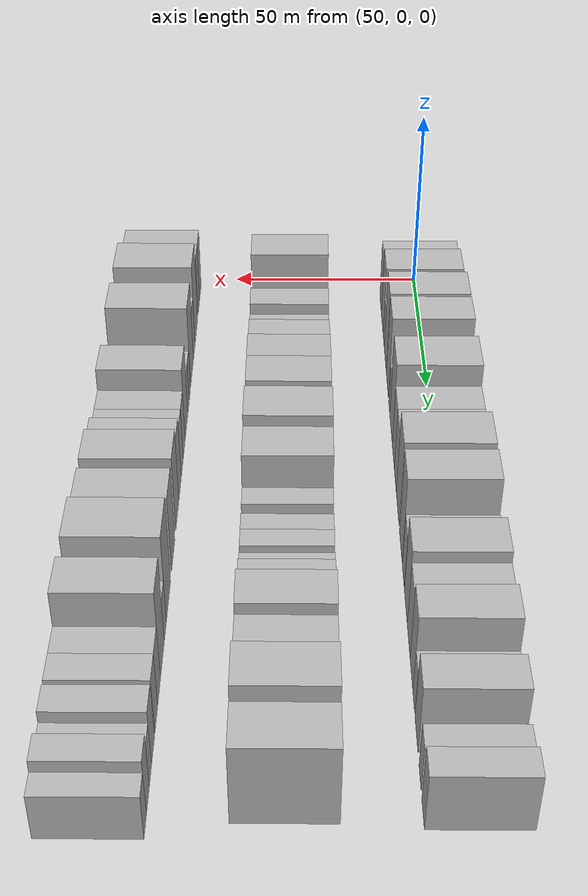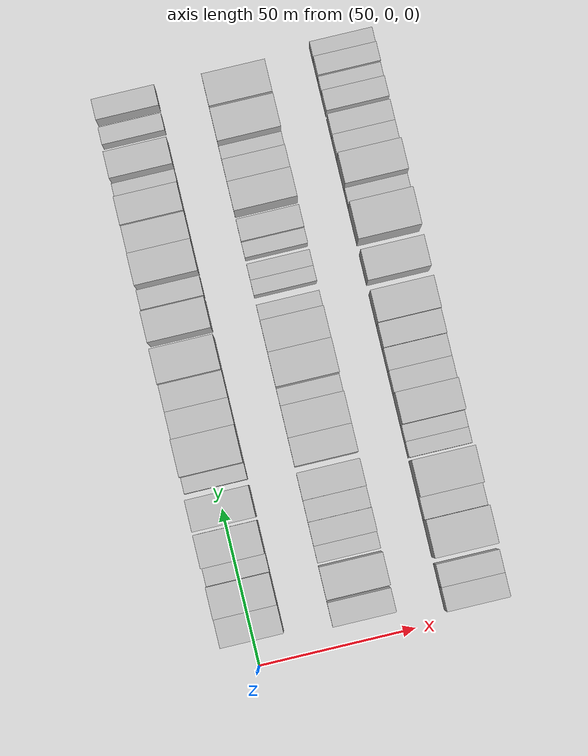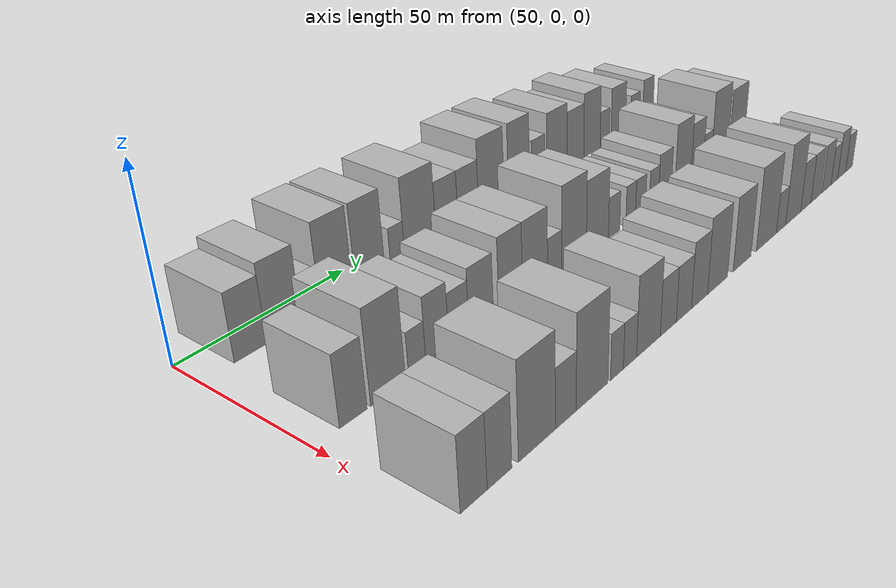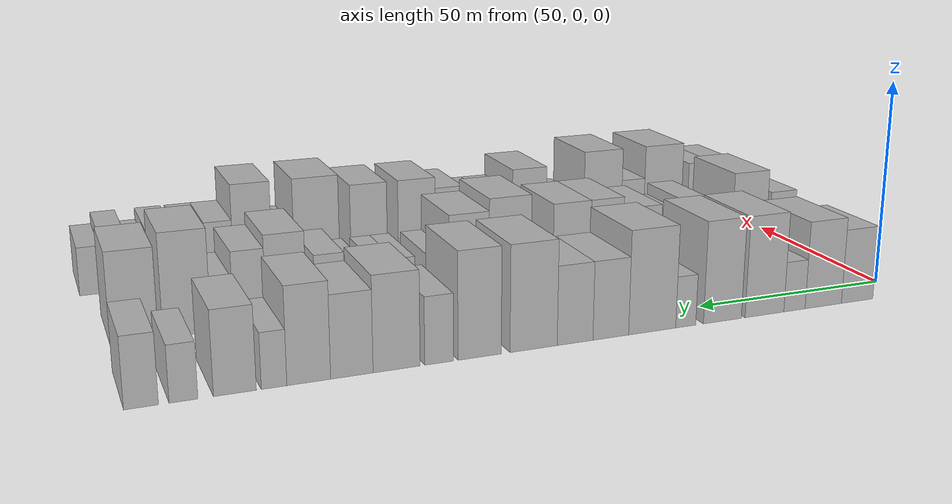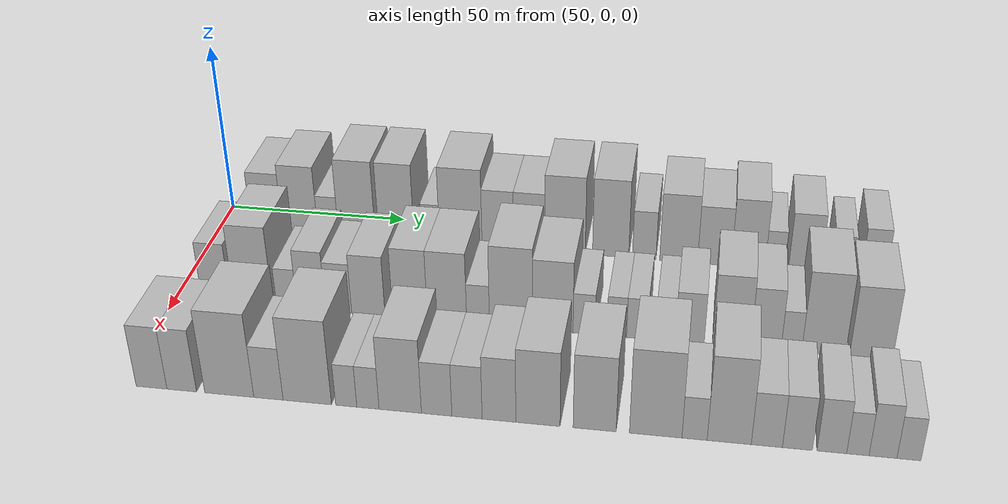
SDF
<sdf version="1.6">
 <world name="default">
  <model name="building_38">
   <static>1</static>
   <pose>50.0000 13.2375 0 0.000000 0.000000 0.000000</pose>
   <link name="link">
    <pose>0 0 9.00 0 0 0</pose>
    <collision name="collision"><geometry><box><size>20.0000 8.9883 18.0000</size></box></geometry></collision>
    <visual name="visual">
     <cast_shadows>0</cast_shadows>
     <geometry><box><size>20.0000 8.9883 18.0000</size></box></geometry>
     <material>
      <script>
       <uri>model://HANNAS_wall/materials/scripts</uri>
       <uri>model://HANNAS_wall/materials/textures</uri>
       <name>vrc/HANNAS_wall</name>
      </script>
     </material>
    </visual>
   </link>
  </model>
  <model name="building_39">
   <static>1</static>
   <pose>50.0000 22.7996 0 0.000000 0.000000 0.000000</pose>
   <link name="link">
    <pose>0 0 10.50 0 0 0</pose>
    <collision name="collision"><geometry><box><size>20.0000 10.1359 21.0000</size></box></geometry></collision>
    <visual name="visual">
     <cast_shadows>0</cast_shadows>
     <geometry><box><size>20.0000 10.1359 21.0000</size></box></geometry>
     <material>
      <script>
       <uri>model://HANNAS_wall/materials/scripts</uri>
       <uri>model://HANNAS_wall/materials/textures</uri>
       <name>vrc/HANNAS_wall</name>
      </script>
     </material>
    </visual>
   </link>
  </model>
  <model name="building_40">
   <static>1</static>
   <pose>50.0000 30.7865 0 0.000000 0.000000 0.000000</pose>
   <link name="link">
    <pose>0 0 6.00 0 0 0</pose>
    <collision name="collision"><geometry><box><size>20.0000 5.8380 12.0000</size></box></geometry></collision>
    <visual name="visual">
     <cast_shadows>0</cast_shadows>
     <geometry><box><size>20.0000 5.8380 12.0000</size></box></geometry>
     <material>
      <script>
       <uri>model://HANNAS_wall/materials/scripts</uri>
       <uri>model://HANNAS_wall/materials/textures</uri>
       <name>vrc/HANNAS_wall</name>
      </script>
     </material>
    </visual>
   </link>
  </model>
  <model name="building_41">
   <static>1</static>
   <pose>50.0000 38.9239 0 0.000000 0.000000 0.000000</pose>
   <link name="link">
    <pose>0 0 12.00 0 0 0</pose>
    <collision name="collision"><geometry><box><size>20.0000 10.4368 24.0000</size></box></geometry></collision>
    <visual name="visual">
     <cast_shadows>0</cast_shadows>
     <geometry><box><size>20.0000 10.4368 24.0000</size></box></geometry>
     <material>
      <script>
       <uri>model://HANNAS_wall/materials/scripts</uri>
       <uri>model://HANNAS_wall/materials/textures</uri>
       <name>vrc/HANNAS_wall</name>
      </script>
     </material>
    </visual>
   </link>
  </model>
  <model name="building_42">
   <static>1</static>
   <pose>50.0000 50.1091 0 0.000000 0.000000 0.000000</pose>
   <link name="link">
    <pose>0 0 12.00 0 0 0</pose>
    <collision name="collision"><geometry><box><size>20.0000 9.9337 24.0000</size></box></geometry></collision>
    <visual name="visual">
     <cast_shadows>0</cast_shadows>
     <geometry><box><size>20.0000 9.9337 24.0000</size></box></geometry>
     <material>
      <script>
       <uri>model://HANNAS_wall/materials/scripts</uri>
       <uri>model://HANNAS_wall/materials/textures</uri>
       <name>vrc/HANNAS_wall</name>
      </script>
     </material>
    </visual>
   </link>
  </model>
  <model name="building_43">
   <static>1</static>
   <pose>50.0000 59.6390 0 0.000000 0.000000 0.000000</pose>
   <link name="link">
    <pose>0 0 6.00 0 0 0</pose>
    <collision name="collision"><geometry><box><size>20.0000 5.1261 12.0000</size></box></geometry></collision>
    <visual name="visual">
     <cast_shadows>0</cast_shadows>
     <geometry><box><size>20.0000 5.1261 12.0000</size></box></geometry>
     <material>
      <script>
       <uri>model://HANNAS_wall/materials/scripts</uri>
       <uri>model://HANNAS_wall/materials/textures</uri>
       <name>vrc/HANNAS_wall</name>
      </script>
     </material>
    </visual>
   </link>
  </model>
  <model name="building_44">
   <static>1</static>
   <pose>50.0000 68.1139 0 0.000000 0.000000 0.000000</pose>
   <link name="link">
    <pose>0 0 12.00 0 0 0</pose>
    <collision name="collision"><geometry><box><size>20.0000 11.8237 24.0000</size></box></geometry></collision>
    <visual name="visual">
     <cast_shadows>0</cast_shadows>
     <geometry><box><size>20.0000 11.8237 24.0000</size></box></geometry>
     <material>
      <script>
       <uri>model://HANNAS_wall/materials/scripts</uri>
       <uri>model://HANNAS_wall/materials/textures</uri>
       <name>vrc/HANNAS_wall</name>
      </script>
     </material>
    </visual>
   </link>
  </model>
  <model name="building_45">
   <static>1</static>
   <pose>50.0000 78.3907 0 0.000000 0.000000 0.000000</pose>
   <link name="link">
    <pose>0 0 9.00 0 0 0</pose>
    <collision name="collision"><geometry><box><size>20.0000 8.7300 18.0000</size></box></geometry></collision>
    <visual name="visual">
     <cast_shadows>0</cast_shadows>
     <geometry><box><size>20.0000 8.7300 18.0000</size></box></geometry>
     <material>
      <script>
       <uri>model://HANNAS_wall/materials/scripts</uri>
       <uri>model://HANNAS_wall/materials/textures</uri>
       <name>vrc/HANNAS_wall</name>
      </script>
     </material>
    </visual>
   </link>
  </model>
  <model name="building_46">
   <static>1</static>
   <pose>50.0000 87.0380 0 0.000000 0.000000 0.000000</pose>
   <link name="link">
    <pose>0 0 9.00 0 0 0</pose>
    <collision name="collision"><geometry><box><size>20.0000 8.5646 18.0000</size></box></geometry></collision>
    <visual name="visual">
     <cast_shadows>0</cast_shadows>
     <geometry><box><size>20.0000 8.5646 18.0000</size></box></geometry>
     <material>
      <script>
       <uri>model://HANNAS_wall/materials/scripts</uri>
       <uri>model://HANNAS_wall/materials/textures</uri>
       <name>vrc/HANNAS_wall</name>
      </script>
     </material>
    </visual>
   </link>
  </model>
  <model name="building_47">
   <static>1</static>
   <pose>50.0000 96.8350 0 0.000000 0.000000 0.000000</pose>
   <link name="link">
    <pose>0 0 12.00 0 0 0</pose>
    <collision name="collision"><geometry><box><size>20.0000 11.0292 24.0000</size></box></geometry></collision>
    <visual name="visual">
     <cast_shadows>0</cast_shadows>
     <geometry><box><size>20.0000 11.0292 24.0000</size></box></geometry>
     <material>
      <script>
       <uri>model://HANNAS_wall/materials/scripts</uri>
       <uri>model://HANNAS_wall/materials/textures</uri>
       <name>vrc/HANNAS_wall</name>
      </script>
     </material>
    </visual>
   </link>
  </model>
  <model name="building_48">
   <static>1</static>
   <pose>50.0000 109.2507 0 0.000000 0.000000 0.000000</pose>
   <link name="link">
    <pose>0 0 12.00 0 0 0</pose>
    <collision name="collision"><geometry><box><size>20.0000 9.8022 24.0000</size></box></geometry></collision>
    <visual name="visual">
     <cast_shadows>0</cast_shadows>
     <geometry><box><size>20.0000 9.8022 24.0000</size></box></geometry>
     <material>
      <script>
       <uri>model://HANNAS_wall/materials/scripts</uri>
       <uri>model://HANNAS_wall/materials/textures</uri>
       <name>vrc/HANNAS_wall</name>
      </script>
     </material>
    </visual>
   </link>
  </model>
  <model name="building_49">
   <static>1</static>
   <pose>50.0000 118.3284 0 0.000000 0.000000 0.000000</pose>
   <link name="link">
    <pose>0 0 7.50 0 0 0</pose>
    <collision name="collision"><geometry><box><size>20.0000 6.3532 15.0000</size></box></geometry></collision>
    <visual name="visual">
     <cast_shadows>0</cast_shadows>
     <geometry><box><size>20.0000 6.3532 15.0000</size></box></geometry>
     <material>
      <script>
       <uri>model://HANNAS_wall/materials/scripts</uri>
       <uri>model://HANNAS_wall/materials/textures</uri>
       <name>vrc/HANNAS_wall</name>
      </script>
     </material>
    </visual>
   </link>
  </model>
  <model name="building_50">
   <static>1</static>
   <pose>50.0000 127.5744 0 0.000000 0.000000 0.000000</pose>
   <link name="link">
    <pose>0 0 10.50 0 0 0</pose>
    <collision name="collision"><geometry><box><size>20.0000 10.1386 21.0000</size></box></geometry></collision>
    <visual name="visual">
     <cast_shadows>0</cast_shadows>
     <geometry><box><size>20.0000 10.1386 21.0000</size></box></geometry>
     <material>
      <script>
       <uri>model://HANNAS_wall/materials/scripts</uri>
       <uri>model://HANNAS_wall/materials/textures</uri>
       <name>vrc/HANNAS_wall</name>
      </script>
     </material>
    </visual>
   </link>
  </model>
  <model name="building_51">
   <static>1</static>
   <pose>50.0000 137.1068 0 0.000000 0.000000 0.000000</pose>
   <link name="link">
    <pose>0 0 9.00 0 0 0</pose>
    <collision name="collision"><geometry><box><size>20.0000 8.9263 18.0000</size></box></geometry></collision>
    <visual name="visual">
     <cast_shadows>0</cast_shadows>
     <geometry><box><size>20.0000 8.9263 18.0000</size></box></geometry>
     <material>
      <script>
       <uri>model://HANNAS_wall/materials/scripts</uri>
       <uri>model://HANNAS_wall/materials/textures</uri>
       <name>vrc/HANNAS_wall</name>
      </script>
     </material>
    </visual>
   </link>
  </model>
  <model name="building_52">
   <static>1</static>
   <pose>50.0000 146.0639 0 0.000000 0.000000 0.000000</pose>
   <link name="link">
    <pose>0 0 10.50 0 0 0</pose>
    <collision name="collision"><geometry><box><size>20.0000 8.9878 21.0000</size></box></geometry></collision>
    <visual name="visual">
     <cast_shadows>0</cast_shadows>
     <geometry><box><size>20.0000 8.9878 21.0000</size></box></geometry>
     <material>
      <script>
       <uri>model://HANNAS_wall/materials/scripts</uri>
       <uri>model://HANNAS_wall/materials/textures</uri>
       <name>vrc/HANNAS_wall</name>
      </script>
     </material>
    </visual>
   </link>
  </model>
  <model name="building_53">
   <static>1</static>
   <pose>50.0000 153.1301 0 0.000000 0.000000 0.000000</pose>
   <link name="link">
    <pose>0 0 6.00 0 0 0</pose>
    <collision name="collision"><geometry><box><size>20.0000 5.1446 12.0000</size></box></geometry></collision>
    <visual name="visual">
     <cast_shadows>0</cast_shadows>
     <geometry><box><size>20.0000 5.1446 12.0000</size></box></geometry>
     <material>
      <script>
       <uri>model://HANNAS_wall/materials/scripts</uri>
       <uri>model://HANNAS_wall/materials/textures</uri>
       <name>vrc/HANNAS_wall</name>
      </script>
     </material>
    </visual>
   </link>
  </model>
  <model name="building_54">
   <static>1</static>
   <pose>50.0000 160.9307 0 0.000000 0.000000 0.000000</pose>
   <link name="link">
    <pose>0 0 9.00 0 0 0</pose>
    <collision name="collision"><geometry><box><size>20.0000 8.4567 18.0000</size></box></geometry></collision>
    <visual name="visual">
     <cast_shadows>0</cast_shadows>
     <geometry><box><size>20.0000 8.4567 18.0000</size></box></geometry>
     <material>
      <script>
       <uri>model://HANNAS_wall/materials/scripts</uri>
       <uri>model://HANNAS_wall/materials/textures</uri>
       <name>vrc/HANNAS_wall</name>
      </script>
     </material>
    </visual>
   </link>
  </model>
  <model name="building_55">
   <static>1</static>
   <pose>50.0000 170.9289 0 0.000000 0.000000 0.000000</pose>
   <link name="link">
    <pose>0 0 6.00 0 0 0</pose>
    <collision name="collision"><geometry><box><size>20.0000 5.5395 12.0000</size></box></geometry></collision>
    <visual name="visual">
     <cast_shadows>0</cast_shadows>
     <geometry><box><size>20.0000 5.5395 12.0000</size></box></geometry>
     <material>
      <script>
       <uri>model://HANNAS_wall/materials/scripts</uri>
       <uri>model://HANNAS_wall/materials/textures</uri>
       <name>vrc/HANNAS_wall</name>
      </script>
     </material>
    </visual>
   </link>
  </model>
  <model name="building_56">
   <static>1</static>
   <pose>50.0000 178.9766 0 0.000000 0.000000 0.000000</pose>
   <link name="link">
    <pose>0 0 7.50 0 0 0</pose>
    <collision name="collision"><geometry><box><size>20.0000 6.5558 15.0000</size></box></geometry></collision>
    <visual name="visual">
     <cast_shadows>0</cast_shadows>
     <geometry><box><size>20.0000 6.5558 15.0000</size></box></geometry>
     <material>
      <script>
       <uri>model://HANNAS_wall/materials/scripts</uri>
       <uri>model://HANNAS_wall/materials/textures</uri>
       <name>vrc/HANNAS_wall</name>
      </script>
     </material>
    </visual>
   </link>
  </model>
  <model name="building_122">
   <static>1</static>
   <pose>85.0000 10.8468 0 0.000000 0.000000 0.000000</pose>
   <link name="link">
    <pose>0 0 9.00 0 0 0</pose>
    <collision name="collision"><geometry><box><size>20.0000 7.6238 18.0000</size></box></geometry></collision>
    <visual name="visual">
     <cast_shadows>0</cast_shadows>
     <geometry><box><size>20.0000 7.6238 18.0000</size></box></geometry>
     <material>
      <script>
       <uri>model://HANNAS_wall/materials/scripts</uri>
       <uri>model://HANNAS_wall/materials/textures</uri>
       <name>vrc/HANNAS_wall</name>
      </script>
     </material>
    </visual>
   </link>
  </model>
  <model name="building_123">
   <static>1</static>
   <pose>85.0000 20.7957 0 0.000000 0.000000 0.000000</pose>
   <link name="link">
    <pose>0 0 12.00 0 0 0</pose>
    <collision name="collision"><geometry><box><size>20.0000 10.2740 24.0000</size></box></geometry></collision>
    <visual name="visual">
     <cast_shadows>0</cast_shadows>
     <geometry><box><size>20.0000 10.2740 24.0000</size></box></geometry>
     <material>
      <script>
       <uri>model://HANNAS_wall/materials/scripts</uri>
       <uri>model://HANNAS_wall/materials/textures</uri>
       <name>vrc/HANNAS_wall</name>
      </script>
     </material>
    </visual>
   </link>
  </model>
  <model name="building_124">
   <static>1</static>
   <pose>85.0000 29.6329 0 0.000000 0.000000 0.000000</pose>
   <link name="link">
    <pose>0 0 6.00 0 0 0</pose>
    <collision name="collision"><geometry><box><size>20.0000 5.4002 12.0000</size></box></geometry></collision>
    <visual name="visual">
     <cast_shadows>0</cast_shadows>
     <geometry><box><size>20.0000 5.4002 12.0000</size></box></geometry>
     <material>
      <script>
       <uri>model://HANNAS_wall/materials/scripts</uri>
       <uri>model://HANNAS_wall/materials/textures</uri>
       <name>vrc/HANNAS_wall</name>
      </script>
     </material>
    </visual>
   </link>
  </model>
  <model name="building_125">
   <static>1</static>
   <pose>85.0000 36.0879 0 0.000000 0.000000 0.000000</pose>
   <link name="link">
    <pose>0 0 9.00 0 0 0</pose>
    <collision name="collision"><geometry><box><size>20.0000 7.5098 18.0000</size></box></geometry></collision>
    <visual name="visual">
     <cast_shadows>0</cast_shadows>
     <geometry><box><size>20.0000 7.5098 18.0000</size></box></geometry>
     <material>
      <script>
       <uri>model://HANNAS_wall/materials/scripts</uri>
       <uri>model://HANNAS_wall/materials/textures</uri>
       <name>vrc/HANNAS_wall</name>
      </script>
     </material>
    </visual>
   </link>
  </model>
  <model name="building_126">
   <static>1</static>
   <pose>85.0000 43.2332 0 0.000000 0.000000 0.000000</pose>
   <link name="link">
    <pose>0 0 7.50 0 0 0</pose>
    <collision name="collision"><geometry><box><size>20.0000 6.7808 15.0000</size></box></geometry></collision>
    <visual name="visual">
     <cast_shadows>0</cast_shadows>
     <geometry><box><size>20.0000 6.7808 15.0000</size></box></geometry>
     <material>
      <script>
       <uri>model://HANNAS_wall/materials/scripts</uri>
       <uri>model://HANNAS_wall/materials/textures</uri>
       <name>vrc/HANNAS_wall</name>
      </script>
     </material>
    </visual>
   </link>
  </model>
  <model name="building_127">
   <static>1</static>
   <pose>85.0000 50.9589 0 0.000000 0.000000 0.000000</pose>
   <link name="link">
    <pose>0 0 9.00 0 0 0</pose>
    <collision name="collision"><geometry><box><size>20.0000 8.6706 18.0000</size></box></geometry></collision>
    <visual name="visual">
     <cast_shadows>0</cast_shadows>
     <geometry><box><size>20.0000 8.6706 18.0000</size></box></geometry>
     <material>
      <script>
       <uri>model://HANNAS_wall/materials/scripts</uri>
       <uri>model://HANNAS_wall/materials/textures</uri>
       <name>vrc/HANNAS_wall</name>
      </script>
     </material>
    </visual>
   </link>
  </model>
  <model name="building_128">
   <static>1</static>
   <pose>85.0000 61.7650 0 0.000000 0.000000 0.000000</pose>
   <link name="link">
    <pose>0 0 10.50 0 0 0</pose>
    <collision name="collision"><geometry><box><size>20.0000 8.9417 21.0000</size></box></geometry></collision>
    <visual name="visual">
     <cast_shadows>0</cast_shadows>
     <geometry><box><size>20.0000 8.9417 21.0000</size></box></geometry>
     <material>
      <script>
       <uri>model://HANNAS_wall/materials/scripts</uri>
       <uri>model://HANNAS_wall/materials/textures</uri>
       <name>vrc/HANNAS_wall</name>
      </script>
     </material>
    </visual>
   </link>
  </model>
  <model name="building_129">
   <static>1</static>
   <pose>85.0000 71.2674 0 0.000000 0.000000 0.000000</pose>
   <link name="link">
    <pose>0 0 10.50 0 0 0</pose>
    <collision name="collision"><geometry><box><size>20.0000 10.0631 21.0000</size></box></geometry></collision>
    <visual name="visual">
     <cast_shadows>0</cast_shadows>
     <geometry><box><size>20.0000 10.0631 21.0000</size></box></geometry>
     <material>
      <script>
       <uri>model://HANNAS_wall/materials/scripts</uri>
       <uri>model://HANNAS_wall/materials/textures</uri>
       <name>vrc/HANNAS_wall</name>
      </script>
     </material>
    </visual>
   </link>
  </model>
  <model name="building_130">
   <static>1</static>
   <pose>85.0000 79.2062 0 0.000000 0.000000 0.000000</pose>
   <link name="link">
    <pose>0 0 6.00 0 0 0</pose>
    <collision name="collision"><geometry><box><size>20.0000 5.8144 12.0000</size></box></geometry></collision>
    <visual name="visual">
     <cast_shadows>0</cast_shadows>
     <geometry><box><size>20.0000 5.8144 12.0000</size></box></geometry>
     <material>
      <script>
       <uri>model://HANNAS_wall/materials/scripts</uri>
       <uri>model://HANNAS_wall/materials/textures</uri>
       <name>vrc/HANNAS_wall</name>
      </script>
     </material>
    </visual>
   </link>
  </model>
  <model name="building_131">
   <static>1</static>
   <pose>85.0000 87.5602 0 0.000000 0.000000 0.000000</pose>
   <link name="link">
    <pose>0 0 12.00 0 0 0</pose>
    <collision name="collision"><geometry><box><size>20.0000 10.8936 24.0000</size></box></geometry></collision>
    <visual name="visual">
     <cast_shadows>0</cast_shadows>
     <geometry><box><size>20.0000 10.8936 24.0000</size></box></geometry>
     <material>
      <script>
       <uri>model://HANNAS_wall/materials/scripts</uri>
       <uri>model://HANNAS_wall/materials/textures</uri>
       <name>vrc/HANNAS_wall</name>
      </script>
     </material>
    </visual>
   </link>
  </model>
  <model name="building_132">
   <static>1</static>
   <pose>85.0000 98.0987 0 0.000000 0.000000 0.000000</pose>
   <link name="link">
    <pose>0 0 10.50 0 0 0</pose>
    <collision name="collision"><geometry><box><size>20.0000 10.1836 21.0000</size></box></geometry></collision>
    <visual name="visual">
     <cast_shadows>0</cast_shadows>
     <geometry><box><size>20.0000 10.1836 21.0000</size></box></geometry>
     <material>
      <script>
       <uri>model://HANNAS_wall/materials/scripts</uri>
       <uri>model://HANNAS_wall/materials/textures</uri>
       <name>vrc/HANNAS_wall</name>
      </script>
     </material>
    </visual>
   </link>
  </model>
  <model name="building_133">
   <static>1</static>
   <pose>85.0000 105.9333 0 0.000000 0.000000 0.000000</pose>
   <link name="link">
    <pose>0 0 6.00 0 0 0</pose>
    <collision name="collision"><geometry><box><size>20.0000 5.4856 12.0000</size></box></geometry></collision>
    <visual name="visual">
     <cast_shadows>0</cast_shadows>
     <geometry><box><size>20.0000 5.4856 12.0000</size></box></geometry>
     <material>
      <script>
       <uri>model://HANNAS_wall/materials/scripts</uri>
       <uri>model://HANNAS_wall/materials/textures</uri>
       <name>vrc/HANNAS_wall</name>
      </script>
     </material>
    </visual>
   </link>
  </model>
  <model name="building_134">
   <static>1</static>
   <pose>85.0000 114.1151 0 0.000000 0.000000 0.000000</pose>
   <link name="link">
    <pose>0 0 6.00 0 0 0</pose>
    <collision name="collision"><geometry><box><size>20.0000 4.8779 12.0000</size></box></geometry></collision>
    <visual name="visual">
     <cast_shadows>0</cast_shadows>
     <geometry><box><size>20.0000 4.8779 12.0000</size></box></geometry>
     <material>
      <script>
       <uri>model://HANNAS_wall/materials/scripts</uri>
       <uri>model://HANNAS_wall/materials/textures</uri>
       <name>vrc/HANNAS_wall</name>
      </script>
     </material>
    </visual>
   </link>
  </model>
  <model name="building_135">
   <static>1</static>
   <pose>85.0000 119.1193 0 0.000000 0.000000 0.000000</pose>
   <link name="link">
    <pose>0 0 6.00 0 0 0</pose>
    <collision name="collision"><geometry><box><size>20.0000 5.1306 12.0000</size></box></geometry></collision>
    <visual name="visual">
     <cast_shadows>0</cast_shadows>
     <geometry><box><size>20.0000 5.1306 12.0000</size></box></geometry>
     <material>
      <script>
       <uri>model://HANNAS_wall/materials/scripts</uri>
       <uri>model://HANNAS_wall/materials/textures</uri>
       <name>vrc/HANNAS_wall</name>
      </script>
     </material>
    </visual>
   </link>
  </model>
  <model name="building_136">
   <static>1</static>
   <pose>85.0000 126.1466 0 0.000000 0.000000 0.000000</pose>
   <link name="link">
    <pose>0 0 6.00 0 0 0</pose>
    <collision name="collision"><geometry><box><size>20.0000 4.9240 12.0000</size></box></geometry></collision>
    <visual name="visual">
     <cast_shadows>0</cast_shadows>
     <geometry><box><size>20.0000 4.9240 12.0000</size></box></geometry>
     <material>
      <script>
       <uri>model://HANNAS_wall/materials/scripts</uri>
       <uri>model://HANNAS_wall/materials/textures</uri>
       <name>vrc/HANNAS_wall</name>
      </script>
     </material>
    </visual>
   </link>
  </model>
  <model name="building_137">
   <static>1</static>
   <pose>85.0000 132.1580 0 0.000000 0.000000 0.000000</pose>
   <link name="link">
    <pose>0 0 7.50 0 0 0</pose>
    <collision name="collision"><geometry><box><size>20.0000 7.0989 15.0000</size></box></geometry></collision>
    <visual name="visual">
     <cast_shadows>0</cast_shadows>
     <geometry><box><size>20.0000 7.0989 15.0000</size></box></geometry>
     <material>
      <script>
       <uri>model://HANNAS_wall/materials/scripts</uri>
       <uri>model://HANNAS_wall/materials/textures</uri>
       <name>vrc/HANNAS_wall</name>
      </script>
     </material>
    </visual>
   </link>
  </model>
  <model name="building_138">
   <static>1</static>
   <pose>85.0000 142.3460 0 0.000000 0.000000 0.000000</pose>
   <link name="link">
    <pose>0 0 10.50 0 0 0</pose>
    <collision name="collision"><geometry><box><size>20.0000 9.2771 21.0000</size></box></geometry></collision>
    <visual name="visual">
     <cast_shadows>0</cast_shadows>
     <geometry><box><size>20.0000 9.2771 21.0000</size></box></geometry>
     <material>
      <script>
       <uri>model://HANNAS_wall/materials/scripts</uri>
       <uri>model://HANNAS_wall/materials/textures</uri>
       <name>vrc/HANNAS_wall</name>
      </script>
     </material>
    </visual>
   </link>
  </model>
  <model name="building_139">
   <static>1</static>
   <pose>85.0000 150.6772 0 0.000000 0.000000 0.000000</pose>
   <link name="link">
    <pose>0 0 9.00 0 0 0</pose>
    <collision name="collision"><geometry><box><size>20.0000 7.3854 18.0000</size></box></geometry></collision>
    <visual name="visual">
     <cast_shadows>0</cast_shadows>
     <geometry><box><size>20.0000 7.3854 18.0000</size></box></geometry>
     <material>
      <script>
       <uri>model://HANNAS_wall/materials/scripts</uri>
       <uri>model://HANNAS_wall/materials/textures</uri>
       <name>vrc/HANNAS_wall</name>
      </script>
     </material>
    </visual>
   </link>
  </model>
  <model name="building_140">
   <static>1</static>
   <pose>85.0000 156.8750 0 0.000000 0.000000 0.000000</pose>
   <link name="link">
    <pose>0 0 6.00 0 0 0</pose>
    <collision name="collision"><geometry><box><size>20.0000 5.0102 12.0000</size></box></geometry></collision>
    <visual name="visual">
     <cast_shadows>0</cast_shadows>
     <geometry><box><size>20.0000 5.0102 12.0000</size></box></geometry>
     <material>
      <script>
       <uri>model://HANNAS_wall/materials/scripts</uri>
       <uri>model://HANNAS_wall/materials/textures</uri>
       <name>vrc/HANNAS_wall</name>
      </script>
     </material>
    </visual>
   </link>
  </model>
  <model name="building_141">
   <static>1</static>
   <pose>85.0000 164.6271 0 0.000000 0.000000 0.000000</pose>
   <link name="link">
    <pose>0 0 12.00 0 0 0</pose>
    <collision name="collision"><geometry><box><size>20.0000 10.4940 24.0000</size></box></geometry></collision>
    <visual name="visual">
     <cast_shadows>0</cast_shadows>
     <geometry><box><size>20.0000 10.4940 24.0000</size></box></geometry>
     <material>
      <script>
       <uri>model://HANNAS_wall/materials/scripts</uri>
       <uri>model://HANNAS_wall/materials/textures</uri>
       <name>vrc/HANNAS_wall</name>
      </script>
     </material>
    </visual>
   </link>
  </model>
  <model name="building_142">
   <static>1</static>
   <pose>85.0000 176.0073 0 0.000000 0.000000 0.000000</pose>
   <link name="link">
    <pose>0 0 10.50 0 0 0</pose>
    <collision name="collision"><geometry><box><size>20.0000 10.2663 21.0000</size></box></geometry></collision>
    <visual name="visual">
     <cast_shadows>0</cast_shadows>
     <geometry><box><size>20.0000 10.2663 21.0000</size></box></geometry>
     <material>
      <script>
       <uri>model://HANNAS_wall/materials/scripts</uri>
       <uri>model://HANNAS_wall/materials/textures</uri>
       <name>vrc/HANNAS_wall</name>
      </script>
     </material>
    </visual>
   </link>
  </model>
  <model name="building_207">
   <static>1</static>
   <pose>120.0000 7.2881 0 0.000000 0.000000 0.000000</pose>
   <link name="link">
    <pose>0 0 9.00 0 0 0</pose>
    <collision name="collision"><geometry><box><size>20.0000 7.5856 18.0000</size></box></geometry></collision>
    <visual name="visual">
     <cast_shadows>0</cast_shadows>
     <geometry><box><size>20.0000 7.5856 18.0000</size></box></geometry>
     <material>
      <script>
       <uri>model://HANNAS_wall/materials/scripts</uri>
       <uri>model://HANNAS_wall/materials/textures</uri>
       <name>vrc/HANNAS_wall</name>
      </script>
     </material>
    </visual>
   </link>
  </model>
  <model name="building_208">
   <static>1</static>
   <pose>120.0000 14.7070 0 0.000000 0.000000 0.000000</pose>
   <link name="link">
    <pose>0 0 9.00 0 0 0</pose>
    <collision name="collision"><geometry><box><size>20.0000 7.2523 18.0000</size></box></geometry></collision>
    <visual name="visual">
     <cast_shadows>0</cast_shadows>
     <geometry><box><size>20.0000 7.2523 18.0000</size></box></geometry>
     <material>
      <script>
       <uri>model://HANNAS_wall/materials/scripts</uri>
       <uri>model://HANNAS_wall/materials/textures</uri>
       <name>vrc/HANNAS_wall</name>
      </script>
     </material>
    </visual>
   </link>
  </model>
  <model name="building_209">
   <static>1</static>
   <pose>120.0000 26.3052 0 0.000000 0.000000 0.000000</pose>
   <link name="link">
    <pose>0 0 12.00 0 0 0</pose>
    <collision name="collision"><geometry><box><size>20.0000 11.9439 24.0000</size></box></geometry></collision>
    <visual name="visual">
     <cast_shadows>0</cast_shadows>
     <geometry><box><size>20.0000 11.9439 24.0000</size></box></geometry>
     <material>
      <script>
       <uri>model://HANNAS_wall/materials/scripts</uri>
       <uri>model://HANNAS_wall/materials/textures</uri>
       <name>vrc/HANNAS_wall</name>
      </script>
     </material>
    </visual>
   </link>
  </model>
  <model name="building_210">
   <static>1</static>
   <pose>120.0000 35.8146 0 0.000000 0.000000 0.000000</pose>
   <link name="link">
    <pose>0 0 7.50 0 0 0</pose>
    <collision name="collision"><geometry><box><size>20.0000 7.0750 15.0000</size></box></geometry></collision>
    <visual name="visual">
     <cast_shadows>0</cast_shadows>
     <geometry><box><size>20.0000 7.0750 15.0000</size></box></geometry>
     <material>
      <script>
       <uri>model://HANNAS_wall/materials/scripts</uri>
       <uri>model://HANNAS_wall/materials/textures</uri>
       <name>vrc/HANNAS_wall</name>
      </script>
     </material>
    </visual>
   </link>
  </model>
  <model name="building_211">
   <static>1</static>
   <pose>120.0000 45.1506 0 0.000000 0.000000 0.000000</pose>
   <link name="link">
    <pose>0 0 12.00 0 0 0</pose>
    <collision name="collision"><geometry><box><size>20.0000 11.5970 24.0000</size></box></geometry></collision>
    <visual name="visual">
     <cast_shadows>0</cast_shadows>
     <geometry><box><size>20.0000 11.5970 24.0000</size></box></geometry>
     <material>
      <script>
       <uri>model://HANNAS_wall/materials/scripts</uri>
       <uri>model://HANNAS_wall/materials/textures</uri>
       <name>vrc/HANNAS_wall</name>
      </script>
     </material>
    </visual>
   </link>
  </model>
  <model name="building_212">
   <static>1</static>
   <pose>120.0000 54.4614 0 0.000000 0.000000 0.000000</pose>
   <link name="link">
    <pose>0 0 6.00 0 0 0</pose>
    <collision name="collision"><geometry><box><size>20.0000 5.0247 12.0000</size></box></geometry></collision>
    <visual name="visual">
     <cast_shadows>0</cast_shadows>
     <geometry><box><size>20.0000 5.0247 12.0000</size></box></geometry>
     <material>
      <script>
       <uri>model://HANNAS_wall/materials/scripts</uri>
       <uri>model://HANNAS_wall/materials/textures</uri>
       <name>vrc/HANNAS_wall</name>
      </script>
     </material>
    </visual>
   </link>
  </model>
  <model name="building_213">
   <static>1</static>
   <pose>120.0000 59.6111 0 0.000000 0.000000 0.000000</pose>
   <link name="link">
    <pose>0 0 6.00 0 0 0</pose>
    <collision name="collision"><geometry><box><size>20.0000 5.2747 12.0000</size></box></geometry></collision>
    <visual name="visual">
     <cast_shadows>0</cast_shadows>
     <geometry><box><size>20.0000 5.2747 12.0000</size></box></geometry>
     <material>
      <script>
       <uri>model://HANNAS_wall/materials/scripts</uri>
       <uri>model://HANNAS_wall/materials/textures</uri>
       <name>vrc/HANNAS_wall</name>
      </script>
     </material>
    </visual>
   </link>
  </model>
  <model name="building_214">
   <static>1</static>
   <pose>120.0000 67.2452 0 0.000000 0.000000 0.000000</pose>
   <link name="link">
    <pose>0 0 10.50 0 0 0</pose>
    <collision name="collision"><geometry><box><size>20.0000 9.9934 21.0000</size></box></geometry></collision>
    <visual name="visual">
     <cast_shadows>0</cast_shadows>
     <geometry><box><size>20.0000 9.9934 21.0000</size></box></geometry>
     <material>
      <script>
       <uri>model://HANNAS_wall/materials/scripts</uri>
       <uri>model://HANNAS_wall/materials/textures</uri>
       <name>vrc/HANNAS_wall</name>
      </script>
     </material>
    </visual>
   </link>
  </model>
  <model name="building_215">
   <static>1</static>
   <pose>120.0000 75.8105 0 0.000000 0.000000 0.000000</pose>
   <link name="link">
    <pose>0 0 7.50 0 0 0</pose>
    <collision name="collision"><geometry><box><size>20.0000 7.1372 15.0000</size></box></geometry></collision>
    <visual name="visual">
     <cast_shadows>0</cast_shadows>
     <geometry><box><size>20.0000 7.1372 15.0000</size></box></geometry>
     <material>
      <script>
       <uri>model://HANNAS_wall/materials/scripts</uri>
       <uri>model://HANNAS_wall/materials/textures</uri>
       <name>vrc/HANNAS_wall</name>
      </script>
     </material>
    </visual>
   </link>
  </model>
  <model name="building_216">
   <static>1</static>
   <pose>120.0000 82.9022 0 0.000000 0.000000 0.000000</pose>
   <link name="link">
    <pose>0 0 7.50 0 0 0</pose>
    <collision name="collision"><geometry><box><size>20.0000 7.0462 15.0000</size></box></geometry></collision>
    <visual name="visual">
     <cast_shadows>0</cast_shadows>
     <geometry><box><size>20.0000 7.0462 15.0000</size></box></geometry>
     <material>
      <script>
       <uri>model://HANNAS_wall/materials/scripts</uri>
       <uri>model://HANNAS_wall/materials/textures</uri>
       <name>vrc/HANNAS_wall</name>
      </script>
     </material>
    </visual>
   </link>
  </model>
  <model name="building_217">
   <static>1</static>
   <pose>120.0000 90.3285 0 0.000000 0.000000 0.000000</pose>
   <link name="link">
    <pose>0 0 9.00 0 0 0</pose>
    <collision name="collision"><geometry><box><size>20.0000 7.8063 18.0000</size></box></geometry></collision>
    <visual name="visual">
     <cast_shadows>0</cast_shadows>
     <geometry><box><size>20.0000 7.8063 18.0000</size></box></geometry>
     <material>
      <script>
       <uri>model://HANNAS_wall/materials/scripts</uri>
       <uri>model://HANNAS_wall/materials/textures</uri>
       <name>vrc/HANNAS_wall</name>
      </script>
     </material>
    </visual>
   </link>
  </model>
  <model name="building_218">
   <static>1</static>
   <pose>120.0000 99.3109 0 0.000000 0.000000 0.000000</pose>
   <link name="link">
    <pose>0 0 10.50 0 0 0</pose>
    <collision name="collision"><geometry><box><size>20.0000 10.1586 21.0000</size></box></geometry></collision>
    <visual name="visual">
     <cast_shadows>0</cast_shadows>
     <geometry><box><size>20.0000 10.1586 21.0000</size></box></geometry>
     <material>
      <script>
       <uri>model://HANNAS_wall/materials/scripts</uri>
       <uri>model://HANNAS_wall/materials/textures</uri>
       <name>vrc/HANNAS_wall</name>
      </script>
     </material>
    </visual>
   </link>
  </model>
  <model name="building_219">
   <static>1</static>
   <pose>120.0000 112.2909 0 0.000000 0.000000 0.000000</pose>
   <link name="link">
    <pose>0 0 10.50 0 0 0</pose>
    <collision name="collision"><geometry><box><size>20.0000 9.8013 21.0000</size></box></geometry></collision>
    <visual name="visual">
     <cast_shadows>0</cast_shadows>
     <geometry><box><size>20.0000 9.8013 21.0000</size></box></geometry>
     <material>
      <script>
       <uri>model://HANNAS_wall/materials/scripts</uri>
       <uri>model://HANNAS_wall/materials/textures</uri>
       <name>vrc/HANNAS_wall</name>
      </script>
     </material>
    </visual>
   </link>
  </model>
  <model name="building_220">
   <static>1</static>
   <pose>120.0000 126.1131 0 0.000000 0.000000 0.000000</pose>
   <link name="link">
    <pose>0 0 12.00 0 0 0</pose>
    <collision name="collision"><geometry><box><size>20.0000 11.8431 24.0000</size></box></geometry></collision>
    <visual name="visual">
     <cast_shadows>0</cast_shadows>
     <geometry><box><size>20.0000 11.8431 24.0000</size></box></geometry>
     <material>
      <script>
       <uri>model://HANNAS_wall/materials/scripts</uri>
       <uri>model://HANNAS_wall/materials/textures</uri>
       <name>vrc/HANNAS_wall</name>
      </script>
     </material>
    </visual>
   </link>
  </model>
  <model name="building_221">
   <static>1</static>
   <pose>120.0000 134.8516 0 0.000000 0.000000 0.000000</pose>
   <link name="link">
    <pose>0 0 6.00 0 0 0</pose>
    <collision name="collision"><geometry><box><size>20.0000 5.6340 12.0000</size></box></geometry></collision>
    <visual name="visual">
     <cast_shadows>0</cast_shadows>
     <geometry><box><size>20.0000 5.6340 12.0000</size></box></geometry>
     <material>
      <script>
       <uri>model://HANNAS_wall/materials/scripts</uri>
       <uri>model://HANNAS_wall/materials/textures</uri>
       <name>vrc/HANNAS_wall</name>
      </script>
     </material>
    </visual>
   </link>
  </model>
  <model name="building_222">
   <static>1</static>
   <pose>120.0000 142.5783 0 0.000000 0.000000 0.000000</pose>
   <link name="link">
    <pose>0 0 12.00 0 0 0</pose>
    <collision name="collision"><geometry><box><size>20.0000 9.8195 24.0000</size></box></geometry></collision>
    <visual name="visual">
     <cast_shadows>0</cast_shadows>
     <geometry><box><size>20.0000 9.8195 24.0000</size></box></geometry>
     <material>
      <script>
       <uri>model://HANNAS_wall/materials/scripts</uri>
       <uri>model://HANNAS_wall/materials/textures</uri>
       <name>vrc/HANNAS_wall</name>
      </script>
     </material>
    </visual>
   </link>
  </model>
  <model name="building_223">
   <static>1</static>
   <pose>120.0000 150.9297 0 0.000000 0.000000 0.000000</pose>
   <link name="link">
    <pose>0 0 7.50 0 0 0</pose>
    <collision name="collision"><geometry><box><size>20.0000 6.8832 15.0000</size></box></geometry></collision>
    <visual name="visual">
     <cast_shadows>0</cast_shadows>
     <geometry><box><size>20.0000 6.8832 15.0000</size></box></geometry>
     <material>
      <script>
       <uri>model://HANNAS_wall/materials/scripts</uri>
       <uri>model://HANNAS_wall/materials/textures</uri>
       <name>vrc/HANNAS_wall</name>
      </script>
     </material>
    </visual>
   </link>
  </model>
  <model name="building_224">
   <static>1</static>
   <pose>120.0000 157.6649 0 0.000000 0.000000 0.000000</pose>
   <link name="link">
    <pose>0 0 7.50 0 0 0</pose>
    <collision name="collision"><geometry><box><size>20.0000 6.5872 15.0000</size></box></geometry></collision>
    <visual name="visual">
     <cast_shadows>0</cast_shadows>
     <geometry><box><size>20.0000 6.5872 15.0000</size></box></geometry>
     <material>
      <script>
       <uri>model://HANNAS_wall/materials/scripts</uri>
       <uri>model://HANNAS_wall/materials/textures</uri>
       <name>vrc/HANNAS_wall</name>
      </script>
     </material>
    </visual>
   </link>
  </model>
  <model name="building_225">
   <static>1</static>
   <pose>120.0000 165.2067 0 0.000000 0.000000 0.000000</pose>
   <link name="link">
    <pose>0 0 7.50 0 0 0</pose>
    <collision name="collision"><geometry><box><size>20.0000 6.4963 15.0000</size></box></geometry></collision>
    <visual name="visual">
     <cast_shadows>0</cast_shadows>
     <geometry><box><size>20.0000 6.4963 15.0000</size></box></geometry>
     <material>
      <script>
       <uri>model://HANNAS_wall/materials/scripts</uri>
       <uri>model://HANNAS_wall/materials/textures</uri>
       <name>vrc/HANNAS_wall</name>
      </script>
     </material>
    </visual>
   </link>
  </model>
  <model name="building_226">
   <static>1</static>
   <pose>120.0000 170.8855 0 0.000000 0.000000 0.000000</pose>
   <link name="link">
    <pose>0 0 6.00 0 0 0</pose>
    <collision name="collision"><geometry><box><size>20.0000 4.8614 12.0000</size></box></geometry></collision>
    <visual name="visual">
     <cast_shadows>0</cast_shadows>
     <geometry><box><size>20.0000 4.8614 12.0000</size></box></geometry>
     <material>
      <script>
       <uri>model://HANNAS_wall/materials/scripts</uri>
       <uri>model://HANNAS_wall/materials/textures</uri>
       <name>vrc/HANNAS_wall</name>
      </script>
     </material>
    </visual>
   </link>
  </model>
  <model name="building_227">
   <static>1</static>
   <pose>120.0000 176.3419 0 0.000000 0.000000 0.000000</pose>
   <link name="link">
    <pose>0 0 7.50 0 0 0</pose>
    <collision name="collision"><geometry><box><size>20.0000 6.0513 15.0000</size></box></geometry></collision>
    <visual name="visual">
     <cast_shadows>0</cast_shadows>
     <geometry><box><size>20.0000 6.0513 15.0000</size></box></geometry>
     <material>
      <script>
       <uri>model://HANNAS_wall/materials/scripts</uri>
       <uri>model://HANNAS_wall/materials/textures</uri>
       <name>vrc/HANNAS_wall</name>
      </script>
     </material>
    </visual>
   </link>
  </model>
  <model name="building_228">
   <static>1</static>
   <pose>120.0000 181.9627 0 0.000000 0.000000 0.000000</pose>
   <link name="link">
    <pose>0 0 6.00 0 0 0</pose>
    <collision name="collision"><geometry><box><size>20.0000 5.1902 12.0000</size></box></geometry></collision>
    <visual name="visual">
     <cast_shadows>0</cast_shadows>
     <geometry><box><size>20.0000 5.1902 12.0000</size></box></geometry>
     <material>
      <script>
       <uri>model://HANNAS_wall/materials/scripts</uri>
       <uri>model://HANNAS_wall/materials/textures</uri>
       <name>vrc/HANNAS_wall</name>
      </script>
     </material>
    </visual>
   </link>
  </model>
 </world>
</sdf>
